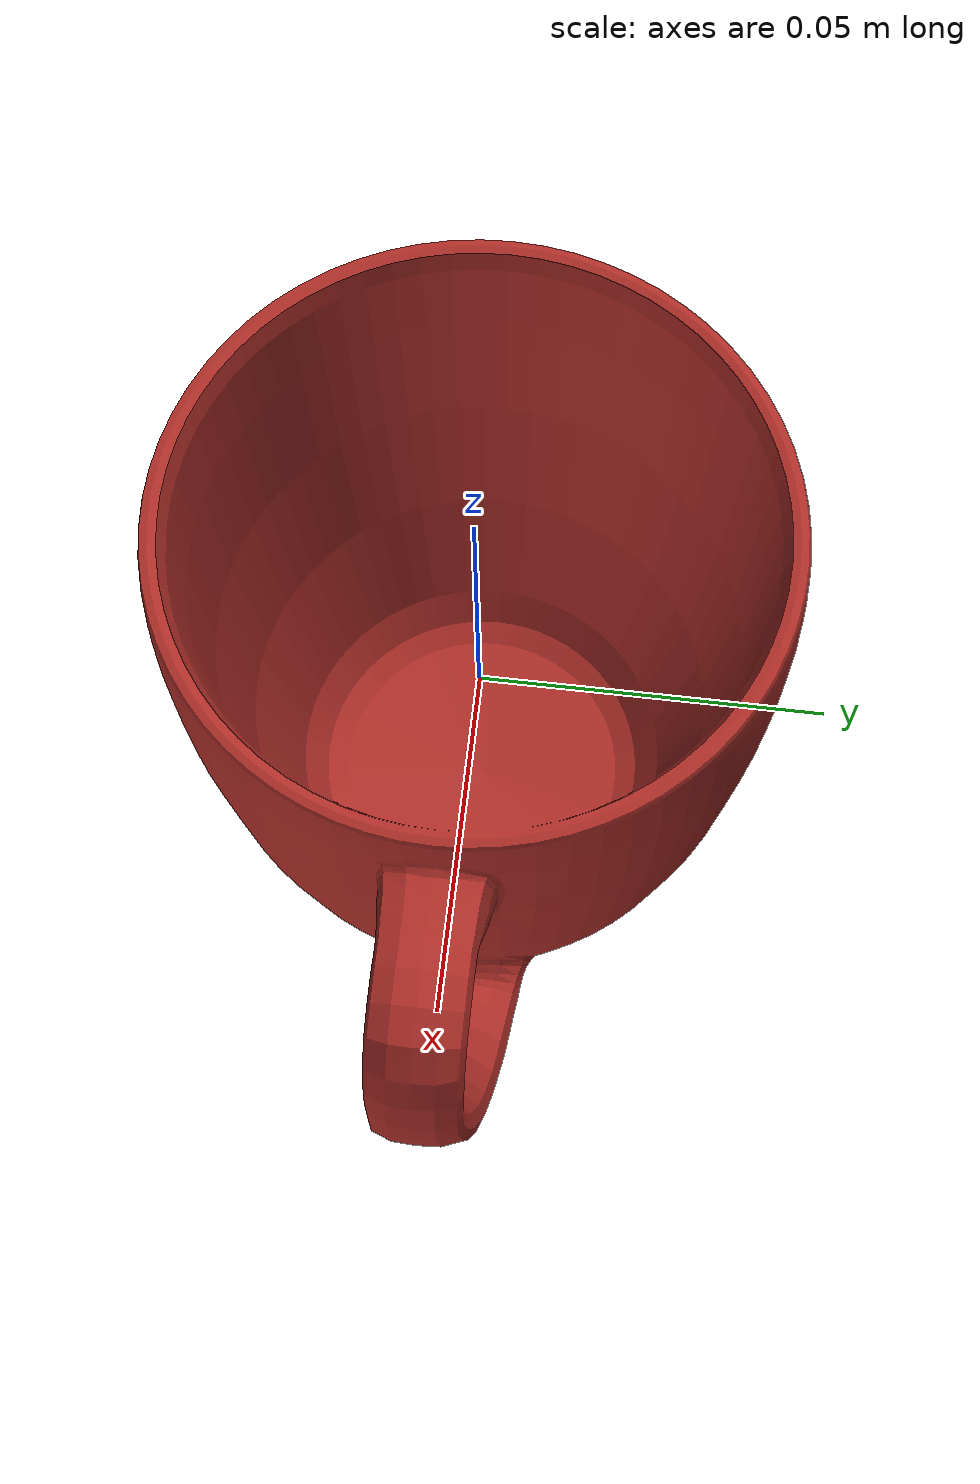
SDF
<?xml version="1.0" encoding="utf-8"?>
<!-- |    This document was autogenerated by xacro from models/mug/corelle_livingware_11oz_mug_red.sdf.xacro | -->
<!-- |    EDITING THIS FILE BY HAND IS NOT RECOMMENDED                                 | -->
<sdf version="1.6" xmlns:xacro="http://www.ros.org/wiki/xacro">
  <model name="corelle_livingware_11oz_mug_red">
    <!--
    Axes:
      +X - pointing toward the handle.
      +Z - pointing toward the top of the cup.
    Origin:
      (0, 0, 0) at the center (while ignoring the handle) of the mug.
    -->
    <link name="corelle_livingware_11oz_mug_red">
      <pose>0 0 0 0 0 0</pose>
      <inertial>
        <pose>0.0042 0.00000 -0.0059 0 0 0</pose>
        <mass>0.321</mass>
        <inertia>
          <ixx> 0.000446</ixx>
          <ixy> 0.000000</ixy>
          <ixz>-0.000016</ixz>
          <iyy> 0.000515</iyy>
          <iyz> 0.000000</iyz>
          <izz> 0.000415</izz>
        </inertia>
      </inertial>
      <visual name="visual">
        <pose>0 0 -0.0497 0 0 0</pose>
        <geometry>
          <mesh>
            <uri>./corelle_livingware_11oz_mug_red.obj</uri>
            <scale>1.0 1.0 1.0</scale>
          </mesh>
        </geometry>
        <material>
          <diffuse>0.673000 0.175000 0.155000 1.0</diffuse>
        </material>
      </visual>
      <!--
      The collision model used here is a rough approximation: a cylinder that
      envelops of the body of the mug, and a box that envelops the handle.
      -->
      <collision name="collision_cylinder">
        <pose>0 0 0 0 0 0</pose>
        <geometry>
          <cylinder>
            <radius>0.043</radius>
            <length>0.099</length>
          </cylinder>
        </geometry>
      </collision>
      <collision name="collision_box">
        <pose>0.053 0 0.006 0 0 0</pose>
        <geometry>
          <box>
            <size>0.036 0.013 0.072</size>
          </box>
        </geometry>
      </collision>
      <!-- Add spheres to bottom and top rims to avoid surface/surface
      collision (which causes jumping). -->
      <collision name="bottom_sphere_collision_0">
        <pose>0.043 0 -0.0495 0 0 0</pose>
        <geometry>
          <sphere>
            <radius>2e-3</radius>
          </sphere>
        </geometry>
      </collision>
      <collision name="bottom_sphere_collision_1">
        <pose>0 0.043 -0.0495 0 0 0</pose>
        <geometry>
          <sphere>
            <radius>2e-3</radius>
          </sphere>
        </geometry>
      </collision>
      <collision name="bottom_sphere_collision_2">
        <pose>-0.043 0 -0.0495 0 0 0</pose>
        <geometry>
          <sphere>
            <radius>2e-3</radius>
          </sphere>
        </geometry>
      </collision>
      <collision name="bottom_sphere_collision_3">
        <pose>0 -0.043 -0.0495 0 0 0</pose>
        <geometry>
          <sphere>
            <radius>2e-3</radius>
          </sphere>
        </geometry>
      </collision>
      <collision name="bottom_sphere_collision_4">
        <pose>.02 0.038 -0.0495 0 0 0</pose>
        <geometry>
          <sphere>
            <radius>2e-3</radius>
          </sphere>
        </geometry>
      </collision>
      <collision name="top_sphere_collision_0">
        <pose>0.043 0 0.0495 0 0 0</pose>
        <geometry>
          <sphere>
            <radius>2e-3</radius>
          </sphere>
        </geometry>
      </collision>
      <collision name="top_sphere_collision_1">
        <pose>0 0.043 0.0495 0 0 0</pose>
        <geometry>
          <sphere>
            <radius>2e-3</radius>
          </sphere>
        </geometry>
      </collision>
      <collision name="top_sphere_collision_2">
        <pose>-0.043 0 0.0495 0 0 0</pose>
        <geometry>
          <sphere>
            <radius>2e-3</radius>
          </sphere>
        </geometry>
      </collision>
      <collision name="top_sphere_collision_3">
        <pose>0 -0.043 0.0495 0 0 0</pose>
        <geometry>
          <sphere>
            <radius>2e-3</radius>
          </sphere>
        </geometry>
      </collision>
      <collision name="top_sphere_collision_4">
        <pose>.02 0.038 0.0495 0 0 0</pose>
        <geometry>
          <sphere>
            <radius>2e-3</radius>
          </sphere>
        </geometry>
      </collision>
      <collision name="top_handle_sphere_collision_0">
        <pose>0.071 0.006 0.042 0 0 0</pose>
        <geometry>
          <sphere>
            <radius>2e-3</radius>
          </sphere>
        </geometry>
      </collision>
      <collision name="top_handle_sphere_collision_1">
        <pose>0.071 -0.006 0.042 0 0 0</pose>
        <geometry>
          <sphere>
            <radius>2e-3</radius>
          </sphere>
        </geometry>
      </collision>
      <collision name="bottom_handle_sphere_collision_0">
        <pose>0.071 0.006 -0.03 0 0 0</pose>
        <geometry>
          <sphere>
            <radius>2e-3</radius>
          </sphere>
        </geometry>
      </collision>
      <collision name="bottom_handle_sphere_collision_1">
        <pose>0.071 -0.006 -0.03 0 0 0</pose>
        <geometry>
          <sphere>
            <radius>2e-3</radius>
          </sphere>
        </geometry>
      </collision>
    </link>
    <frame name="origin">
      <pose frame="corelle_livingware_11oz_mug_red">0 0 0 0 0 0</pose>
    </frame>
    <frame name="bottom">
      <pose frame="corelle_livingware_11oz_mug_red">0 0 -0.05 0 0 0</pose>
    </frame>
    <frame name="center">
      <pose frame="corelle_livingware_11oz_mug_red">0 0 0 0 0 0</pose>
    </frame>
  </model>
</sdf>
